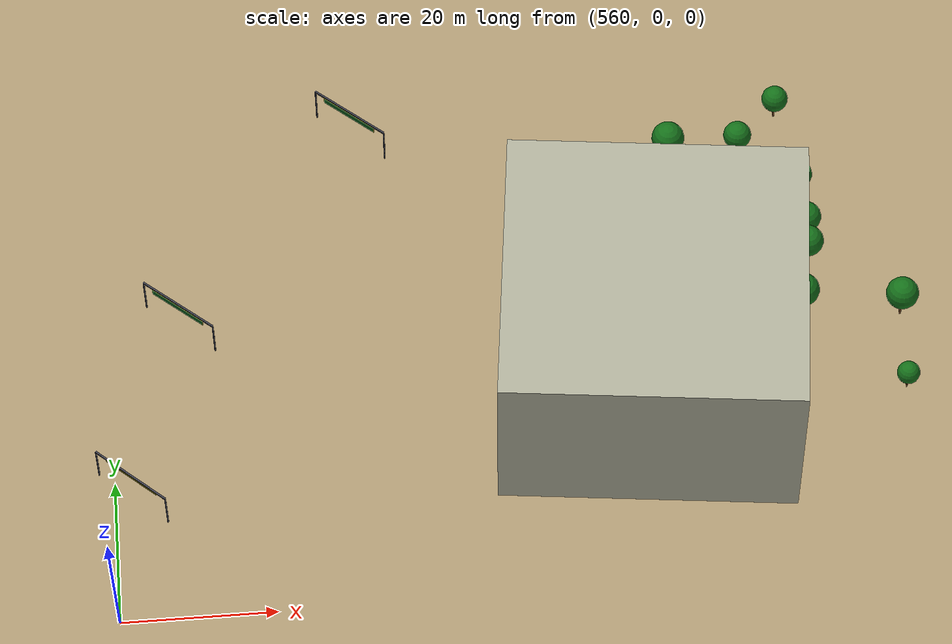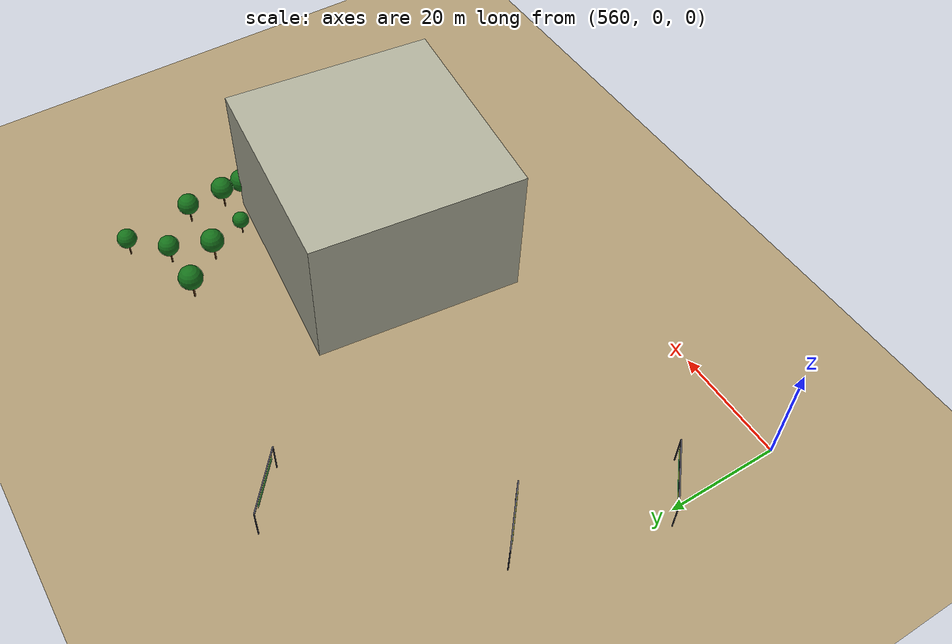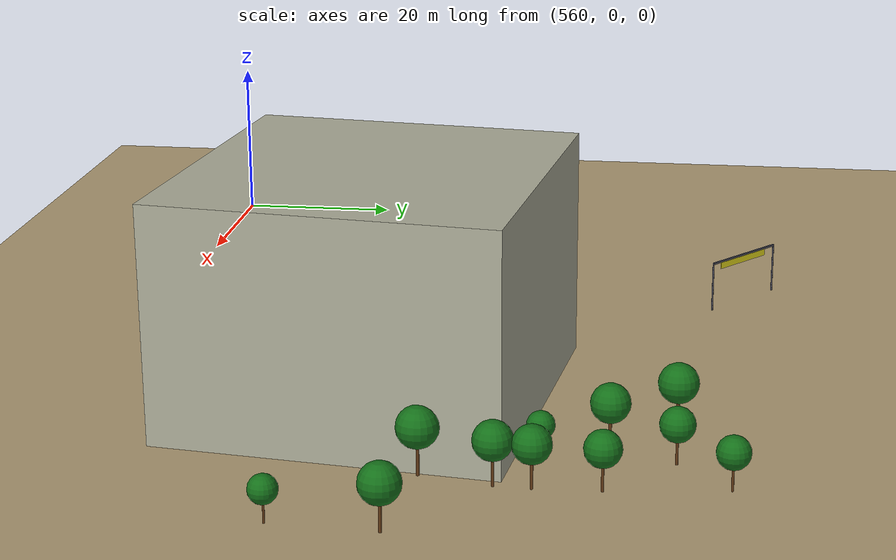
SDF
<sdf version="1.9">
 <world name="crossroad_world">
  <model name="ground_plane">
   <static>true</static>
   <pose>0 0 -0.05 0 0 0</pose>
   <link name="link">
    <collision name="collision">
     <geometry><plane><normal>0 0 1</normal><size>10000 10000</size></plane></geometry>
    </collision>
    <visual name="visual">
     <geometry><plane><normal>0 0 1</normal><size>15000 15000</size></plane></geometry>
     <material><ambient>0.68 0.60 0.45 1</ambient><diffuse>0.68 0.60 0.45 1</diffuse></material>
    </visual>
   </link>
  </model>
  <model name="gantry_41">
   <static>true</static>
   <pose>562.286 17.798 0 0 0 2.420</pose>
   <link name="link">
    <visual name="post_l">
     <pose>-5.700 0 2.925 0 0 0</pose>
     <geometry><cylinder><radius>0.1</radius><length>5.85</length></cylinder></geometry>
     <material><ambient>0.30 0.30 0.35 1</ambient><diffuse>0.30 0.30 0.35 1</diffuse></material>
    </visual>
    <visual name="post_r">
     <pose>5.700 0 2.925 0 0 0</pose>
     <geometry><cylinder><radius>0.1</radius><length>5.85</length></cylinder></geometry>
     <material><ambient>0.30 0.30 0.35 1</ambient><diffuse>0.30 0.30 0.35 1</diffuse></material>
    </visual>
    <visual name="beam">
     <pose>0 0 6.000 0 0 0</pose>
     <geometry><box><size>11.400 0.22 0.22</size></box></geometry>
     <material><ambient>0.30 0.30 0.35 1</ambient><diffuse>0.30 0.30 0.35 1</diffuse></material>
    </visual>
    <visual name="sign_border">
     <pose>0 -0.14 5.450 0 0 0</pose>
     <geometry><box><size>8.288 0.04 0.92</size></box></geometry>
     <material><ambient>0.90 0.85 0.10 1</ambient><diffuse>0.90 0.85 0.10 1</diffuse></material>
    </visual>
    <visual name="sign_panel">
     <pose>0 -0.15 5.450 0 0 0</pose>
     <geometry><box><size>8.208 0.05 0.86</size></box></geometry>
     <material><ambient>0.05 0.38 0.10 1</ambient><diffuse>0.05 0.38 0.10 1</diffuse></material>
    </visual>
    <collision name="col_post_l">
     <pose>-5.700 0 2.925 0 0 0</pose>
     <geometry><cylinder><radius>0.1</radius><length>5.85</length></cylinder></geometry>
    </collision>
    <collision name="col_post_r">
     <pose>5.700 0 2.925 0 0 0</pose>
     <geometry><cylinder><radius>0.1</radius><length>5.85</length></cylinder></geometry>
    </collision>
    <collision name="col_beam">
     <pose>0 0 6.000 0 0 0</pose>
     <geometry><box><size>11.400 0.22 0.22</size></box></geometry>
    </collision>
   </link>
  </model>
  <model name="gantry_124">
   <static>true</static>
   <pose>593.335 71.105 0 0 0 -0.704</pose>
   <link name="link">
    <visual name="post_l">
     <pose>-5.700 0 2.925 0 0 0</pose>
     <geometry><cylinder><radius>0.1</radius><length>5.85</length></cylinder></geometry>
     <material><ambient>0.30 0.30 0.35 1</ambient><diffuse>0.30 0.30 0.35 1</diffuse></material>
    </visual>
    <visual name="post_r">
     <pose>5.700 0 2.925 0 0 0</pose>
     <geometry><cylinder><radius>0.1</radius><length>5.85</length></cylinder></geometry>
     <material><ambient>0.30 0.30 0.35 1</ambient><diffuse>0.30 0.30 0.35 1</diffuse></material>
    </visual>
    <visual name="beam">
     <pose>0 0 6.000 0 0 0</pose>
     <geometry><box><size>11.400 0.22 0.22</size></box></geometry>
     <material><ambient>0.30 0.30 0.35 1</ambient><diffuse>0.30 0.30 0.35 1</diffuse></material>
    </visual>
    <visual name="sign_border">
     <pose>0 -0.14 5.450 0 0 0</pose>
     <geometry><box><size>8.288 0.04 0.92</size></box></geometry>
     <material><ambient>0.90 0.85 0.10 1</ambient><diffuse>0.90 0.85 0.10 1</diffuse></material>
    </visual>
    <visual name="sign_panel">
     <pose>0 -0.15 5.450 0 0 0</pose>
     <geometry><box><size>8.208 0.05 0.86</size></box></geometry>
     <material><ambient>0.05 0.38 0.10 1</ambient><diffuse>0.05 0.38 0.10 1</diffuse></material>
    </visual>
    <collision name="col_post_l">
     <pose>-5.700 0 2.925 0 0 0</pose>
     <geometry><cylinder><radius>0.1</radius><length>5.85</length></cylinder></geometry>
    </collision>
    <collision name="col_post_r">
     <pose>5.700 0 2.925 0 0 0</pose>
     <geometry><cylinder><radius>0.1</radius><length>5.85</length></cylinder></geometry>
    </collision>
    <collision name="col_beam">
     <pose>0 0 6.000 0 0 0</pose>
     <geometry><box><size>11.400 0.22 0.22</size></box></geometry>
    </collision>
   </link>
  </model>
  <model name="gantry_125">
   <static>true</static>
   <pose>569.314 42.759 0 0 0 -0.702</pose>
   <link name="link">
    <visual name="post_l">
     <pose>-5.700 0 2.925 0 0 0</pose>
     <geometry><cylinder><radius>0.1</radius><length>5.85</length></cylinder></geometry>
     <material><ambient>0.30 0.30 0.35 1</ambient><diffuse>0.30 0.30 0.35 1</diffuse></material>
    </visual>
    <visual name="post_r">
     <pose>5.700 0 2.925 0 0 0</pose>
     <geometry><cylinder><radius>0.1</radius><length>5.85</length></cylinder></geometry>
     <material><ambient>0.30 0.30 0.35 1</ambient><diffuse>0.30 0.30 0.35 1</diffuse></material>
    </visual>
    <visual name="beam">
     <pose>0 0 6.000 0 0 0</pose>
     <geometry><box><size>11.400 0.22 0.22</size></box></geometry>
     <material><ambient>0.30 0.30 0.35 1</ambient><diffuse>0.30 0.30 0.35 1</diffuse></material>
    </visual>
    <visual name="sign_border">
     <pose>0 -0.14 5.450 0 0 0</pose>
     <geometry><box><size>8.288 0.04 0.92</size></box></geometry>
     <material><ambient>0.90 0.85 0.10 1</ambient><diffuse>0.90 0.85 0.10 1</diffuse></material>
    </visual>
    <visual name="sign_panel">
     <pose>0 -0.15 5.450 0 0 0</pose>
     <geometry><box><size>8.208 0.05 0.86</size></box></geometry>
     <material><ambient>0.05 0.38 0.10 1</ambient><diffuse>0.05 0.38 0.10 1</diffuse></material>
    </visual>
    <collision name="col_post_l">
     <pose>-5.700 0 2.925 0 0 0</pose>
     <geometry><cylinder><radius>0.1</radius><length>5.85</length></cylinder></geometry>
    </collision>
    <collision name="col_post_r">
     <pose>5.700 0 2.925 0 0 0</pose>
     <geometry><cylinder><radius>0.1</radius><length>5.85</length></cylinder></geometry>
    </collision>
    <collision name="col_beam">
     <pose>0 0 6.000 0 0 0</pose>
     <geometry><box><size>11.400 0.22 0.22</size></box></geometry>
    </collision>
   </link>
  </model>
  <model name="tree_138">
   <static>true</static>
   <pose>652.413 50.639 0 0 0 0</pose>
   <link name="link">
    <visual name="trunk">
     <pose>0 0 1.708 0 0 0</pose>
     <geometry><cylinder><radius>0.149</radius><length>3.415</length></cylinder></geometry>
     <material><ambient>0.38 0.22 0.08 1</ambient><diffuse>0.38 0.22 0.08 1</diffuse></material>
    </visual>
    <visual name="canopy">
     <pose>0 0 4.733 0 0 0</pose>
     <geometry><sphere><radius>2.028</radius></sphere></geometry>
     <material><ambient>0.08 0.44 0.10 1</ambient><diffuse>0.08 0.44 0.10 1</diffuse></material>
    </visual>
    <collision name="col">
     <pose>0 0 1.708 0 0 0</pose>
     <geometry><cylinder><radius>0.149</radius><length>3.415</length></cylinder></geometry>
    </collision>
   </link>
  </model>
  <model name="tree_139">
   <static>true</static>
   <pose>641.439 57.574 0 0 0 0</pose>
   <link name="link">
    <visual name="trunk">
     <pose>0 0 1.773 0 0 0</pose>
     <geometry><cylinder><radius>0.155</radius><length>3.546</length></cylinder></geometry>
     <material><ambient>0.38 0.22 0.08 1</ambient><diffuse>0.38 0.22 0.08 1</diffuse></material>
    </visual>
    <visual name="canopy">
     <pose>0 0 4.915 0 0 0</pose>
     <geometry><sphere><radius>2.105</radius></sphere></geometry>
     <material><ambient>0.08 0.44 0.10 1</ambient><diffuse>0.08 0.44 0.10 1</diffuse></material>
    </visual>
    <collision name="col">
     <pose>0 0 1.773 0 0 0</pose>
     <geometry><cylinder><radius>0.155</radius><length>3.546</length></cylinder></geometry>
    </collision>
   </link>
  </model>
  <model name="tree_140">
   <static>true</static>
   <pose>650.662 39.128 0 0 0 0</pose>
   <link name="link">
    <visual name="trunk">
     <pose>0 0 1.875 0 0 0</pose>
     <geometry><cylinder><radius>0.164</radius><length>3.750</length></cylinder></geometry>
     <material><ambient>0.38 0.22 0.08 1</ambient><diffuse>0.38 0.22 0.08 1</diffuse></material>
    </visual>
    <visual name="canopy">
     <pose>0 0 5.197 0 0 0</pose>
     <geometry><sphere><radius>2.226</radius></sphere></geometry>
     <material><ambient>0.08 0.44 0.10 1</ambient><diffuse>0.08 0.44 0.10 1</diffuse></material>
    </visual>
    <collision name="col">
     <pose>0 0 1.875 0 0 0</pose>
     <geometry><cylinder><radius>0.164</radius><length>3.750</length></cylinder></geometry>
    </collision>
   </link>
  </model>
  <model name="tree_141">
   <static>true</static>
   <pose>644.817 64.492 0 0 0 0</pose>
   <link name="link">
    <visual name="trunk">
     <pose>0 0 1.567 0 0 0</pose>
     <geometry><cylinder><radius>0.137</radius><length>3.133</length></cylinder></geometry>
     <material><ambient>0.38 0.22 0.08 1</ambient><diffuse>0.38 0.22 0.08 1</diffuse></material>
    </visual>
    <visual name="canopy">
     <pose>0 0 4.342 0 0 0</pose>
     <geometry><sphere><radius>1.860</radius></sphere></geometry>
     <material><ambient>0.08 0.44 0.10 1</ambient><diffuse>0.08 0.44 0.10 1</diffuse></material>
    </visual>
    <collision name="col">
     <pose>0 0 1.567 0 0 0</pose>
     <geometry><cylinder><radius>0.137</radius><length>3.133</length></cylinder></geometry>
    </collision>
   </link>
  </model>
  <model name="tree_144">
   <static>true</static>
   <pose>652.244 46.792 0 0 0 0</pose>
   <link name="link">
    <visual name="trunk">
     <pose>0 0 1.752 0 0 0</pose>
     <geometry><cylinder><radius>0.153</radius><length>3.504</length></cylinder></geometry>
     <material><ambient>0.38 0.22 0.08 1</ambient><diffuse>0.38 0.22 0.08 1</diffuse></material>
    </visual>
    <visual name="canopy">
     <pose>0 0 4.856 0 0 0</pose>
     <geometry><sphere><radius>2.080</radius></sphere></geometry>
     <material><ambient>0.08 0.44 0.10 1</ambient><diffuse>0.08 0.44 0.10 1</diffuse></material>
    </visual>
    <collision name="col">
     <pose>0 0 1.752 0 0 0</pose>
     <geometry><cylinder><radius>0.153</radius><length>3.504</length></cylinder></geometry>
    </collision>
   </link>
  </model>
  <model name="tree_145">
   <static>true</static>
   <pose>646.318 37.634 0 0 0 0</pose>
   <link name="link">
    <visual name="trunk">
     <pose>0 0 1.455 0 0 0</pose>
     <geometry><cylinder><radius>0.127</radius><length>2.910</length></cylinder></geometry>
     <material><ambient>0.38 0.22 0.08 1</ambient><diffuse>0.38 0.22 0.08 1</diffuse></material>
    </visual>
    <visual name="canopy">
     <pose>0 0 4.033 0 0 0</pose>
     <geometry><sphere><radius>1.728</radius></sphere></geometry>
     <material><ambient>0.08 0.44 0.10 1</ambient><diffuse>0.08 0.44 0.10 1</diffuse></material>
    </visual>
    <collision name="col">
     <pose>0 0 1.455 0 0 0</pose>
     <geometry><cylinder><radius>0.127</radius><length>2.910</length></cylinder></geometry>
    </collision>
   </link>
  </model>
  <model name="tree_147">
   <static>true</static>
   <pose>652.110 57.522 0 0 0 0</pose>
   <link name="link">
    <visual name="trunk">
     <pose>0 0 1.625 0 0 0</pose>
     <geometry><cylinder><radius>0.142</radius><length>3.250</length></cylinder></geometry>
     <material><ambient>0.38 0.22 0.08 1</ambient><diffuse>0.38 0.22 0.08 1</diffuse></material>
    </visual>
    <visual name="canopy">
     <pose>0 0 4.504 0 0 0</pose>
     <geometry><sphere><radius>1.930</radius></sphere></geometry>
     <material><ambient>0.08 0.44 0.10 1</ambient><diffuse>0.08 0.44 0.10 1</diffuse></material>
    </visual>
    <collision name="col">
     <pose>0 0 1.625 0 0 0</pose>
     <geometry><cylinder><radius>0.142</radius><length>3.250</length></cylinder></geometry>
    </collision>
   </link>
  </model>
  <model name="tree_149">
   <static>true</static>
   <pose>663.613 37.682 0 0 0 0</pose>
   <link name="link">
    <visual name="trunk">
     <pose>0 0 1.803 0 0 0</pose>
     <geometry><cylinder><radius>0.158</radius><length>3.606</length></cylinder></geometry>
     <material><ambient>0.38 0.22 0.08 1</ambient><diffuse>0.38 0.22 0.08 1</diffuse></material>
    </visual>
    <visual name="canopy">
     <pose>0 0 4.997 0 0 0</pose>
     <geometry><sphere><radius>2.141</radius></sphere></geometry>
     <material><ambient>0.08 0.44 0.10 1</ambient><diffuse>0.08 0.44 0.10 1</diffuse></material>
    </visual>
    <collision name="col">
     <pose>0 0 1.803 0 0 0</pose>
     <geometry><cylinder><radius>0.158</radius><length>3.606</length></cylinder></geometry>
    </collision>
   </link>
  </model>
  <model name="tree_151">
   <static>true</static>
   <pose>663.106 26.519 0 0 0 0</pose>
   <link name="link">
    <visual name="trunk">
     <pose>0 0 1.264 0 0 0</pose>
     <geometry><cylinder><radius>0.111</radius><length>2.528</length></cylinder></geometry>
     <material><ambient>0.38 0.22 0.08 1</ambient><diffuse>0.38 0.22 0.08 1</diffuse></material>
    </visual>
    <visual name="canopy">
     <pose>0 0 3.504 0 0 0</pose>
     <geometry><sphere><radius>1.501</radius></sphere></geometry>
     <material><ambient>0.08 0.44 0.10 1</ambient><diffuse>0.08 0.44 0.10 1</diffuse></material>
    </visual>
    <collision name="col">
     <pose>0 0 1.264 0 0 0</pose>
     <geometry><cylinder><radius>0.111</radius><length>2.528</length></cylinder></geometry>
    </collision>
   </link>
  </model>
  <model name="tree_152">
   <static>true</static>
   <pose>644.590 50.745 0 0 0 0</pose>
   <link name="link">
    <visual name="trunk">
     <pose>0 0 1.253 0 0 0</pose>
     <geometry><cylinder><radius>0.110</radius><length>2.505</length></cylinder></geometry>
     <material><ambient>0.38 0.22 0.08 1</ambient><diffuse>0.38 0.22 0.08 1</diffuse></material>
    </visual>
    <visual name="canopy">
     <pose>0 0 3.472 0 0 0</pose>
     <geometry><sphere><radius>1.488</radius></sphere></geometry>
     <material><ambient>0.08 0.44 0.10 1</ambient><diffuse>0.08 0.44 0.10 1</diffuse></material>
    </visual>
    <collision name="col">
     <pose>0 0 1.253 0 0 0</pose>
     <geometry><cylinder><radius>0.110</radius><length>2.505</length></cylinder></geometry>
    </collision>
   </link>
  </model>
  <model name="tree_155">
   <static>true</static>
   <pose>645.455 44.318 0 0 0 0</pose>
   <link name="link">
    <visual name="trunk">
     <pose>0 0 1.380 0 0 0</pose>
     <geometry><cylinder><radius>0.121</radius><length>2.759</length></cylinder></geometry>
     <material><ambient>0.38 0.22 0.08 1</ambient><diffuse>0.38 0.22 0.08 1</diffuse></material>
    </visual>
    <visual name="canopy">
     <pose>0 0 3.824 0 0 0</pose>
     <geometry><sphere><radius>1.638</radius></sphere></geometry>
     <material><ambient>0.08 0.44 0.10 1</ambient><diffuse>0.08 0.44 0.10 1</diffuse></material>
    </visual>
    <collision name="col">
     <pose>0 0 1.380 0 0 0</pose>
     <geometry><cylinder><radius>0.121</radius><length>2.759</length></cylinder></geometry>
    </collision>
   </link>
  </model>
  <model name="tree_157">
   <static>true</static>
   <pose>650.476 70.072 0 0 0 0</pose>
   <link name="link">
    <visual name="trunk">
     <pose>0 0 1.475 0 0 0</pose>
     <geometry><cylinder><radius>0.129</radius><length>2.950</length></cylinder></geometry>
     <material><ambient>0.38 0.22 0.08 1</ambient><diffuse>0.38 0.22 0.08 1</diffuse></material>
    </visual>
    <visual name="canopy">
     <pose>0 0 4.089 0 0 0</pose>
     <geometry><sphere><radius>1.752</radius></sphere></geometry>
     <material><ambient>0.08 0.44 0.10 1</ambient><diffuse>0.08 0.44 0.10 1</diffuse></material>
    </visual>
    <collision name="col">
     <pose>0 0 1.475 0 0 0</pose>
     <geometry><cylinder><radius>0.129</radius><length>2.950</length></cylinder></geometry>
    </collision>
   </link>
  </model>
  <model name="tree_158">
   <static>true</static>
   <pose>635.463 64.298 0 0 0 0</pose>
   <link name="link">
    <visual name="trunk">
     <pose>0 0 1.832 0 0 0</pose>
     <geometry><cylinder><radius>0.160</radius><length>3.664</length></cylinder></geometry>
     <material><ambient>0.38 0.22 0.08 1</ambient><diffuse>0.38 0.22 0.08 1</diffuse></material>
    </visual>
    <visual name="canopy">
     <pose>0 0 5.079 0 0 0</pose>
     <geometry><sphere><radius>2.176</radius></sphere></geometry>
     <material><ambient>0.08 0.44 0.10 1</ambient><diffuse>0.08 0.44 0.10 1</diffuse></material>
    </visual>
    <collision name="col">
     <pose>0 0 1.832 0 0 0</pose>
     <geometry><cylinder><radius>0.160</radius><length>3.664</length></cylinder></geometry>
    </collision>
   </link>
  </model>
  <model name="building_705">
   <static>true</static>
   <pose>630.020 31.051 12.938 0 0 -0.111</pose>
   <link name="link">
    <visual name="body">
     <geometry><box><size>38.48 37.43 25.88</size></box></geometry>
     <material><ambient>0.68 0.68 0.60 1</ambient><diffuse>0.68 0.68 0.60 1</diffuse></material>
    </visual>
    <collision name="col"><geometry><box><size>38.48 37.43 25.88</size></box></geometry></collision>
   </link>
  </model>
 </world>
</sdf>
